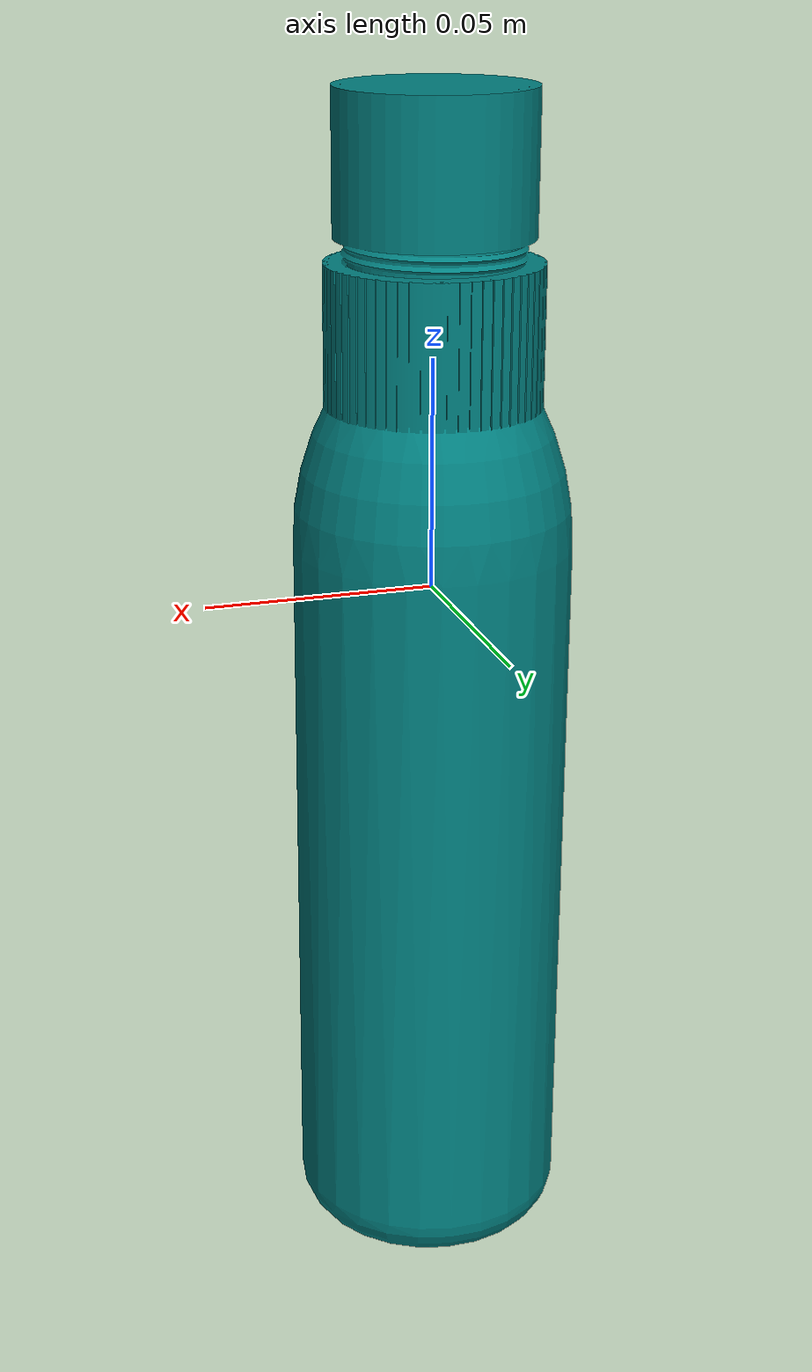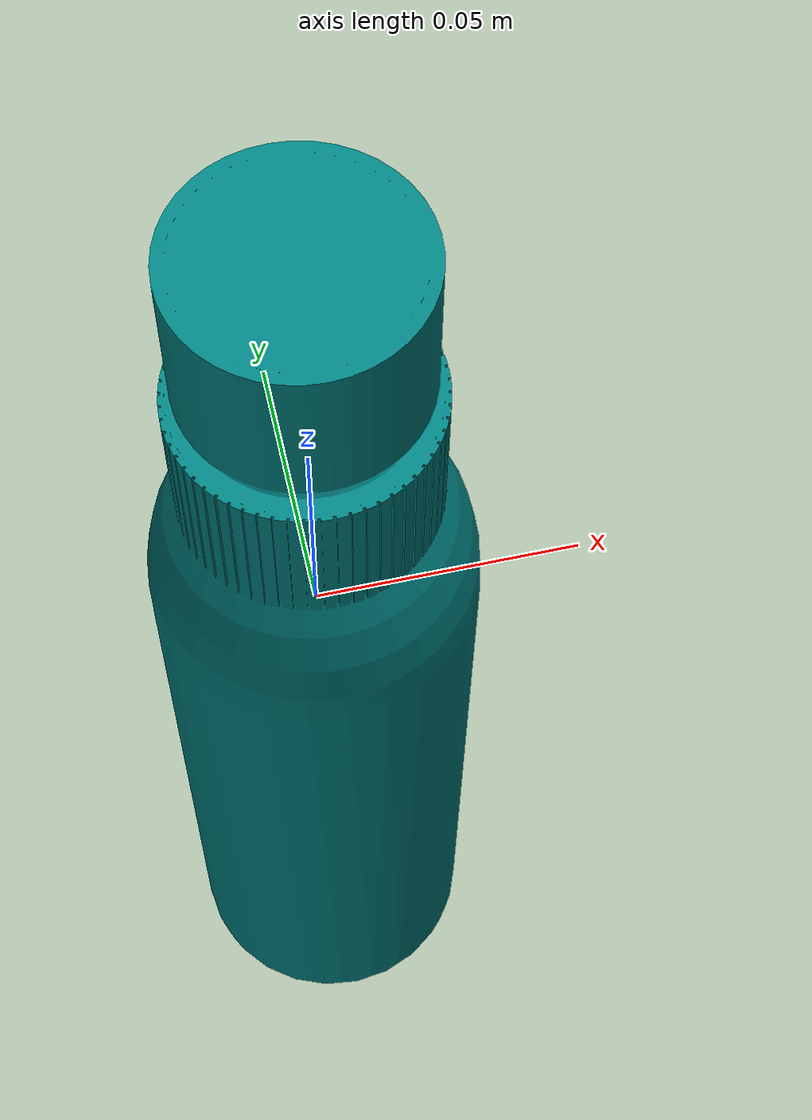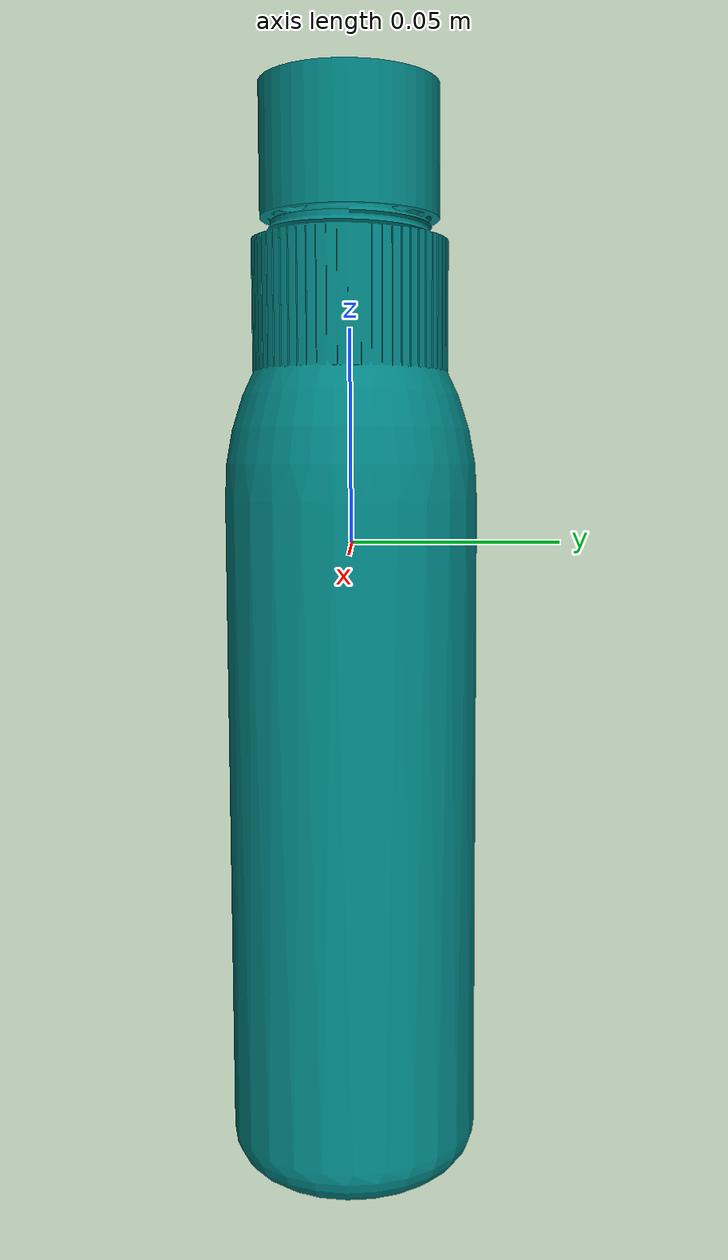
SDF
<?xml version ="1.0"?>
<sdf version="1.6">
  <model name="adhesive">

    <link name="link">

      <inertial>
        <pose>0 0 0 0 0 0</pose>
        <mass>0.08</mass>
      </inertial>

      <collision name="colision1">
        <pose>0 0 0 0 0 0 </pose>
        <geometry>
          <mesh>
            <uri>model://adhesive/meshes/adhesive.dae</uri>
          </mesh>
        </geometry>
      </collision>

      <visual name="visual1">
        <cast_shadows>true</cast_shadows>
	      <pose> 0 0 0 0 0 0</pose>
        <geometry>
          <mesh>
            <uri>model://adhesive/meshes/adhesive.dae</uri>
          </mesh>
        </geometry>
	      <material>
          <ambient>0 0.5 0.5 1</ambient>
          <diffuse>0 0.5 0.5 1</diffuse>
          <specular>0 0.5 0.5 1</specular>
	      </material>
      </visual>

    </link>
  </model>
</sdf>
